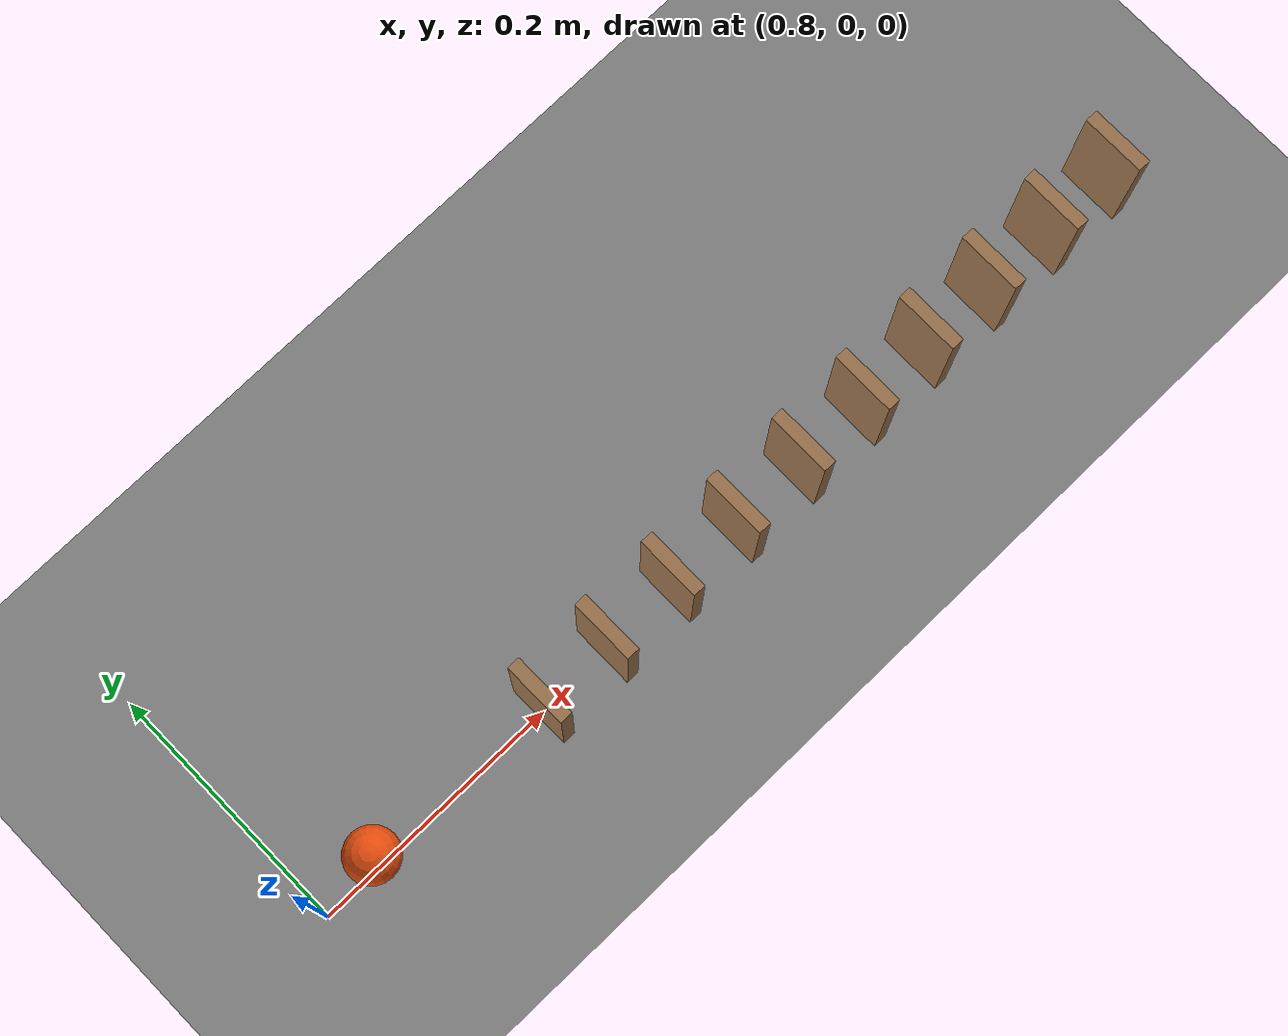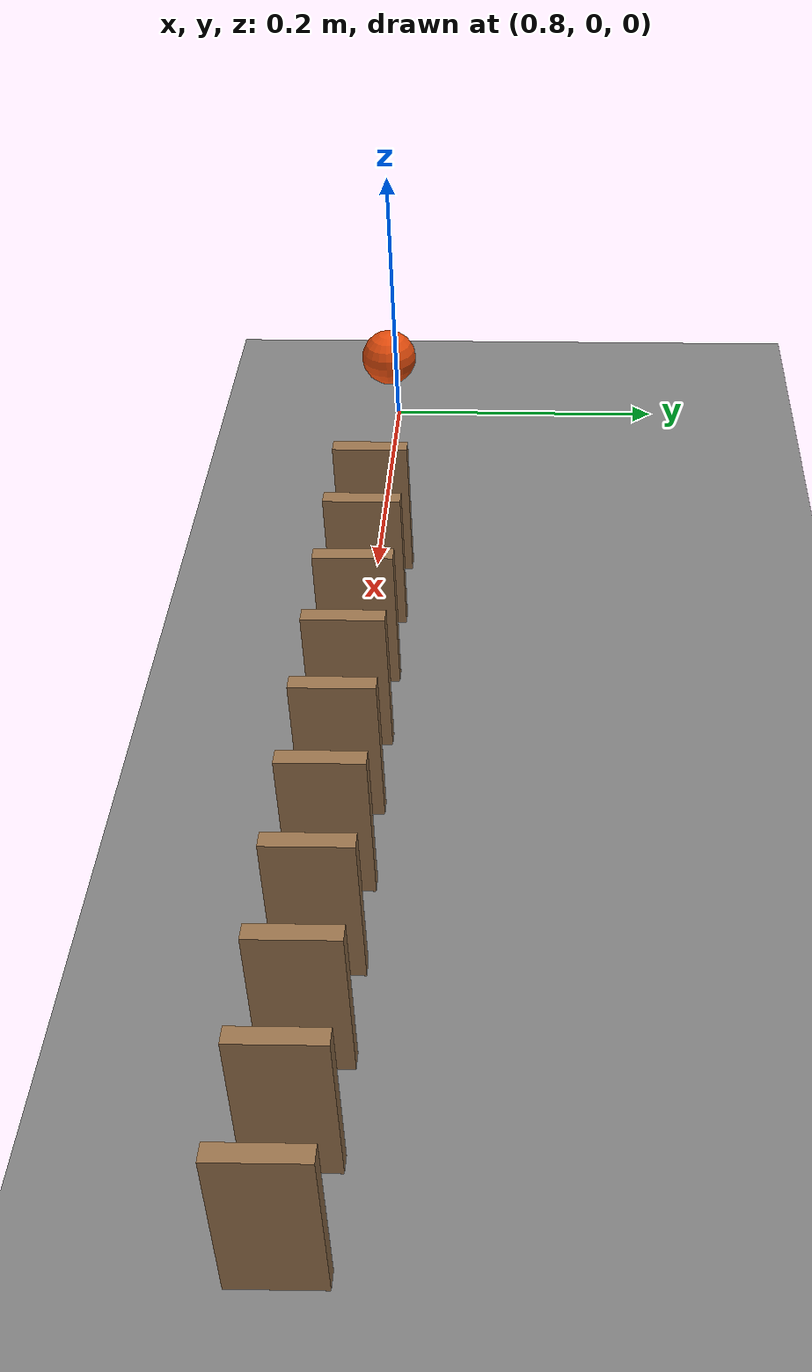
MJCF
<mujoco model="domino_row">
  <compiler angle="radian"/>
  <option timestep="0.002"/>
  <worldbody>
    <geom name="floor" type="plane" size="6 6 0.1" friction="0.8 0.005 0.002"/>
    <body name="domino1" pos="1 0 0.05">
      <freejoint/>
      <geom name="domino1" type="box" pos="0 0 0" size="0.005 0.025 0.05" mass="0.03" friction="0.5 0.005 0.002" rgba="0.6 0.45 0.3 1"/>
    </body>
    <body name="domino2" pos="1.06 0 0.05">
      <freejoint/>
      <geom name="domino2" type="box" pos="0 0 0" size="0.005 0.025 0.05" mass="0.03" friction="0.5 0.005 0.002" rgba="0.6 0.45 0.3 1"/>
    </body>
    <body name="domino3" pos="1.12 0 0.05">
      <freejoint/>
      <geom name="domino3" type="box" pos="0 0 0" size="0.005 0.025 0.05" mass="0.03" friction="0.5 0.005 0.002" rgba="0.6 0.45 0.3 1"/>
    </body>
    <body name="domino4" pos="1.18 0 0.05">
      <freejoint/>
      <geom name="domino4" type="box" pos="0 0 0" size="0.005 0.025 0.05" mass="0.03" friction="0.5 0.005 0.002" rgba="0.6 0.45 0.3 1"/>
    </body>
    <body name="domino5" pos="1.24 0 0.05">
      <freejoint/>
      <geom name="domino5" type="box" pos="0 0 0" size="0.005 0.025 0.05" mass="0.03" friction="0.5 0.005 0.002" rgba="0.6 0.45 0.3 1"/>
    </body>
    <body name="domino6" pos="1.3 0 0.05">
      <freejoint/>
      <geom name="domino6" type="box" pos="0 0 0" size="0.005 0.025 0.05" mass="0.03" friction="0.5 0.005 0.002" rgba="0.6 0.45 0.3 1"/>
    </body>
    <body name="domino7" pos="1.36 0 0.05">
      <freejoint/>
      <geom name="domino7" type="box" pos="0 0 0" size="0.005 0.025 0.05" mass="0.03" friction="0.5 0.005 0.002" rgba="0.6 0.45 0.3 1"/>
    </body>
    <body name="domino8" pos="1.42 0 0.05">
      <freejoint/>
      <geom name="domino8" type="box" pos="0 0 0" size="0.005 0.025 0.05" mass="0.03" friction="0.5 0.005 0.002" rgba="0.6 0.45 0.3 1"/>
    </body>
    <body name="domino9" pos="1.48 0 0.05">
      <freejoint/>
      <geom name="domino9" type="box" pos="0 0 0" size="0.005 0.025 0.05" mass="0.03" friction="0.5 0.005 0.002" rgba="0.6 0.45 0.3 1"/>
    </body>
    <body name="domino10" pos="1.54 0 0.05">
      <freejoint/>
      <geom name="domino10" type="box" pos="0 0 0" size="0.005 0.025 0.05" mass="0.03" friction="0.5 0.005 0.002" rgba="0.6 0.45 0.3 1"/>
    </body>
    <body name="pusher" pos="0.85 0 0.08">
      <freejoint/>
      <geom name="pusher" type="sphere" pos="0 0 0" size="0.02" mass="0.03" rgba="0.9 0.3 0.05 1"/>
    </body>
  </worldbody>
  <keyframe>
    <key name="start" qpos="1 0 0.05 1 0 0 0 1.06 0 0.05 1 0 0 0 1.12 0 0.05 1 0 0 0 1.18 0 0.05 1 0 0 0 1.24 0 0.05 1 0 0 0 1.3 0 0.05 1 0 0 0 1.36 0 0.05 1 0 0 0 1.42 0 0.05 1 0 0 0 1.48 0 0.05 1 0 0 0 1.54 0 0.05 1 0 0 0 0.85 0 0.08 1 0 0 0" qvel="0 0 0 0 0 0 0 0 0 0 0 0 0 0 0 0 0 0 0 0 0 0 0 0 0 0 0 0 0 0 0 0 0 0 0 0 0 0 0 0 0 0 0 0 0 0 0 0 0 0 0 0 0 0 0 0 0 0 0 0 1.5 0 0.5 0 0 0"/>
  </keyframe>
</mujoco>
